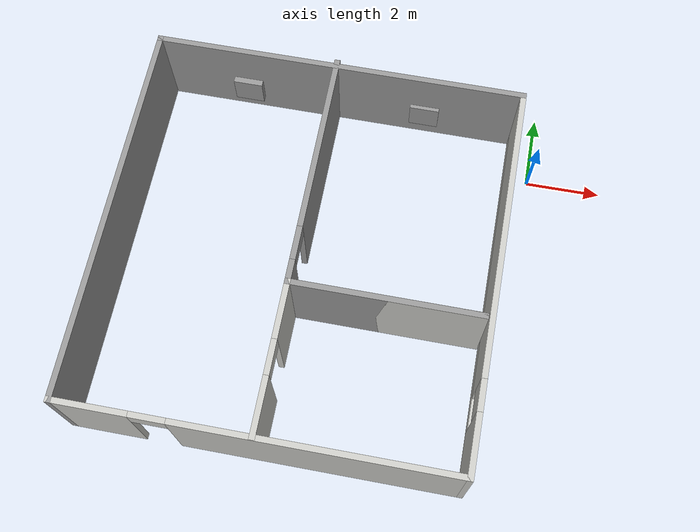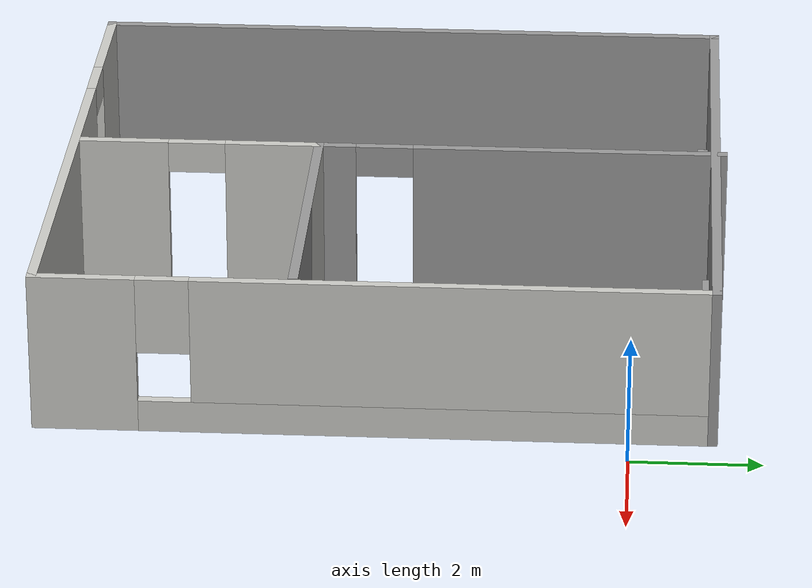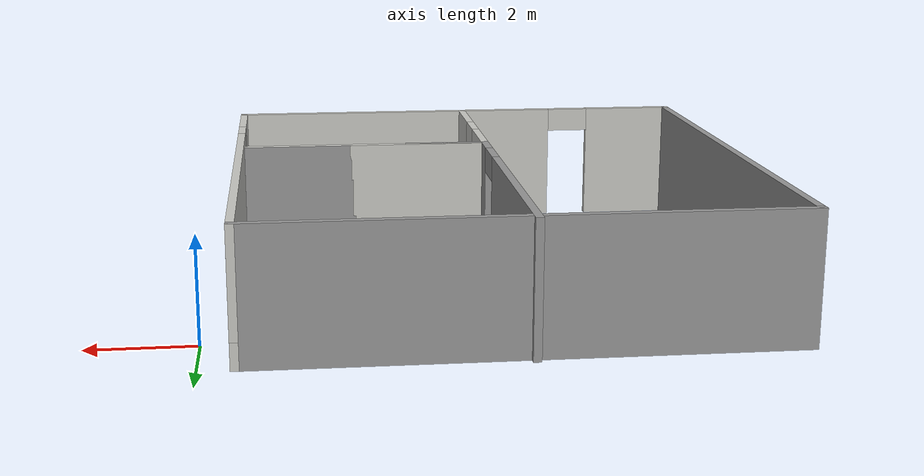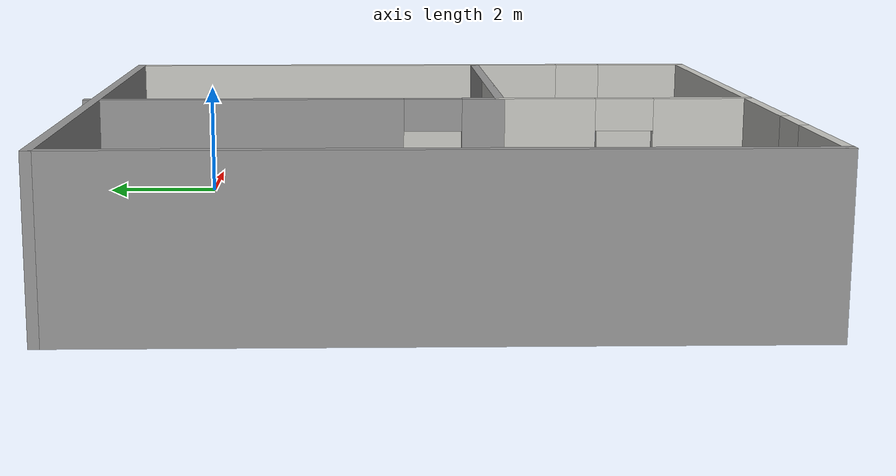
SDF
<?xml version='1.0'?>
<sdf version='1.7'>
  <model name='Untitled'>
    <pose>-5.27701 -3.7479 0 0 -0 0</pose>
    <link name='Wall_11'>
      <pose>-0.372007 1.931 0 0 -0 -1.5708</pose>
      <visual name='Wall_11_Visual_0'>
        <pose>-0.781 0 1.25 0 -0 0</pose>
        <geometry>
          <box>
            <size>4.938 0.15 2.5</size>
          </box>
        </geometry>
        <material>
          <script>
            <uri>file://media/materials/scripts/gazebo.material</uri>
            <name>Gazebo/Grey</name>
          </script>
          <ambient>1 1 1 1</ambient>
        </material>
        <meta>
          <layer>0</layer>
        </meta>
      </visual>
      <collision name='Wall_11_Collision_0'>
        <geometry>
          <box>
            <size>4.938 0.15 2.5</size>
          </box>
        </geometry>
        <pose>-0.781 0 1.25 0 -0 0</pose>
      </collision>
      <visual name='Wall_11_Visual_1'>
        <pose>2.919 0 1.25 0 -0 0</pose>
        <geometry>
          <box>
            <size>0.662 0.15 2.5</size>
          </box>
        </geometry>
        <material>
          <script>
            <uri>file://media/materials/scripts/gazebo.material</uri>
            <name>Gazebo/Grey</name>
          </script>
          <ambient>1 1 1 1</ambient>
        </material>
        <meta>
          <layer>0</layer>
        </meta>
      </visual>
      <collision name='Wall_11_Collision_1'>
        <geometry>
          <box>
            <size>0.662 0.15 2.5</size>
          </box>
        </geometry>
        <pose>2.919 0 1.25 0 -0 0</pose>
      </collision>
      <visual name='Wall_11_Visual_2'>
        <pose>2.138 0 2.25 0 -0 0</pose>
        <geometry>
          <box>
            <size>0.9 0.15 0.5</size>
          </box>
        </geometry>
        <material>
          <script>
            <uri>file://media/materials/scripts/gazebo.material</uri>
            <name>Gazebo/Grey</name>
          </script>
          <ambient>1 1 1 1</ambient>
        </material>
        <meta>
          <layer>0</layer>
        </meta>
      </visual>
      <collision name='Wall_11_Collision_2'>
        <geometry>
          <box>
            <size>0.9 0.15 0.5</size>
          </box>
        </geometry>
        <pose>2.138 0 2.25 0 -0 0</pose>
      </collision>
    </link>
    <link name='Wall_12'>
      <collision name='Wall_12_Collision'>
        <geometry>
          <box>
            <size>5 0.15 2.5</size>
          </box>
        </geometry>
        <pose>0 0 1.25 0 -0 0</pose>
      </collision>
      <visual name='Wall_12_Visual'>
        <pose>0 0 1.25 0 -0 0</pose>
        <geometry>
          <box>
            <size>5 0.15 2.5</size>
          </box>
        </geometry>
        <material>
          <script>
            <uri>file://media/materials/scripts/gazebo.material</uri>
            <name>Gazebo/Grey</name>
          </script>
          <ambient>1 1 1 1</ambient>
        </material>
        <meta>
          <layer>0</layer>
        </meta>
      </visual>
      <pose>2.05299 -1.244 0 0 -0 0</pose>
    </link>
    <link name='Wall_13'>
      <collision name='Wall_13_Collision'>
        <geometry>
          <box>
            <size>5 0.15 2.5</size>
          </box>
        </geometry>
        <pose>0 0 1.25 0 -0 0</pose>
      </collision>
      <visual name='Wall_13_Visual'>
        <pose>0 0 1.25 0 -0 0</pose>
        <geometry>
          <box>
            <size>5 0.15 2.5</size>
          </box>
        </geometry>
        <material>
          <script>
            <uri>file://media/materials/scripts/gazebo.material</uri>
            <name>Gazebo/CeilingTiled</name>
          </script>
          <ambient>1 1 1 1</ambient>
        </material>
        <meta>
          <layer>0</layer>
        </meta>
      </visual>
      <pose>2.05299 -1.244 0 0 -0 3.14159</pose>
    </link>
    <link name='Wall_14'>
      <pose>-0.372007 -3.169 0 0 -0 -1.5708</pose>
      <visual name='Wall_14_Visual_0'>
        <pose>-1.2225 0 1.25 0 -0 0</pose>
        <geometry>
          <box>
            <size>1.555 0.15 2.5</size>
          </box>
        </geometry>
        <material>
          <script>
            <uri>file://media/materials/scripts/gazebo.material</uri>
            <name>Gazebo/CeilingTiled</name>
          </script>
          <ambient>1 1 1 1</ambient>
        </material>
        <meta>
          <layer>0</layer>
        </meta>
      </visual>
      <collision name='Wall_14_Collision_0'>
        <geometry>
          <box>
            <size>1.555 0.15 2.5</size>
          </box>
        </geometry>
        <pose>-1.2225 0 1.25 0 -0 0</pose>
      </collision>
      <visual name='Wall_14_Visual_1'>
        <pose>1.2275 0 1.25 0 -0 0</pose>
        <geometry>
          <box>
            <size>1.545 0.15 2.5</size>
          </box>
        </geometry>
        <material>
          <script>
            <uri>file://media/materials/scripts/gazebo.material</uri>
            <name>Gazebo/CeilingTiled</name>
          </script>
          <ambient>1 1 1 1</ambient>
        </material>
        <meta>
          <layer>0</layer>
        </meta>
      </visual>
      <collision name='Wall_14_Collision_1'>
        <geometry>
          <box>
            <size>1.545 0.15 2.5</size>
          </box>
        </geometry>
        <pose>1.2275 0 1.25 0 -0 0</pose>
      </collision>
      <visual name='Wall_14_Visual_2'>
        <pose>0.005 0 2.25 0 -0 0</pose>
        <geometry>
          <box>
            <size>0.9 0.15 0.5</size>
          </box>
        </geometry>
        <material>
          <script>
            <uri>file://media/materials/scripts/gazebo.material</uri>
            <name>Gazebo/CeilingTiled</name>
          </script>
          <ambient>1 1 1 1</ambient>
        </material>
        <meta>
          <layer>0</layer>
        </meta>
      </visual>
      <collision name='Wall_14_Collision_2'>
        <geometry>
          <box>
            <size>0.9 0.15 0.5</size>
          </box>
        </geometry>
        <pose>0.005 0 2.25 0 -0 0</pose>
      </collision>
    </link>
    <link name='Wall_6'>
      <pose>-0.277008 -5.106 0 0 -0 0</pose>
      <visual name='Wall_6_Visual_0'>
        <pose>-4.0145 0 1.25 0 -0 0</pose>
        <geometry>
          <box>
            <size>1.971 0.15 2.5</size>
          </box>
        </geometry>
        <material>
          <script>
            <uri>file://media/materials/scripts/gazebo.material</uri>
            <name>Gazebo/CeilingTiled</name>
          </script>
          <ambient>1 1 1 1</ambient>
        </material>
        <meta>
          <layer>0</layer>
        </meta>
      </visual>
      <collision name='Wall_6_Collision_0'>
        <geometry>
          <box>
            <size>1.971 0.15 2.5</size>
          </box>
        </geometry>
        <pose>-4.0145 0 1.25 0 -0 0</pose>
      </collision>
      <visual name='Wall_6_Visual_1'>
        <pose>1.4355 0 1.25 0 -0 0</pose>
        <geometry>
          <box>
            <size>7.129 0.15 2.5</size>
          </box>
        </geometry>
        <material>
          <script>
            <uri>file://media/materials/scripts/gazebo.material</uri>
            <name>Gazebo/CeilingTiled</name>
          </script>
          <ambient>1 1 1 1</ambient>
        </material>
        <meta>
          <layer>0</layer>
        </meta>
      </visual>
      <collision name='Wall_6_Collision_1'>
        <geometry>
          <box>
            <size>7.129 0.15 2.5</size>
          </box>
        </geometry>
        <pose>1.4355 0 1.25 0 -0 0</pose>
      </collision>
      <visual name='Wall_6_Visual_2'>
        <pose>-2.579 0 2.25 0 -0 0</pose>
        <geometry>
          <box>
            <size>0.9 0.15 0.5</size>
          </box>
        </geometry>
        <material>
          <script>
            <uri>file://media/materials/scripts/gazebo.material</uri>
            <name>Gazebo/CeilingTiled</name>
          </script>
          <ambient>1 1 1 1</ambient>
        </material>
        <meta>
          <layer>0</layer>
        </meta>
      </visual>
      <collision name='Wall_6_Collision_2'>
        <geometry>
          <box>
            <size>0.9 0.15 0.5</size>
          </box>
        </geometry>
        <pose>-2.579 0 2.25 0 -0 0</pose>
      </collision>
    </link>
    <link name='Wall_7'>
      <pose>4.64799 -0.056 0 0 -0 1.5708</pose>
      <visual name='Wall_7_Visual_0'>
        <pose>-4.3215 0 1.25 0 -0 0</pose>
        <geometry>
          <box>
            <size>1.607 0.15 2.5</size>
          </box>
        </geometry>
        <material>
          <script>
            <uri>file://media/materials/scripts/gazebo.material</uri>
            <name>Gazebo/CeilingTiled</name>
          </script>
          <ambient>1 1 1 1</ambient>
        </material>
        <meta>
          <layer>0</layer>
        </meta>
      </visual>
      <collision name='Wall_7_Collision_0'>
        <geometry>
          <box>
            <size>1.607 0.15 2.5</size>
          </box>
        </geometry>
        <pose>-4.3215 0 1.25 0 -0 0</pose>
      </collision>
      <visual name='Wall_7_Visual_1'>
        <pose>0.8035 0 0.25 0 -0 0</pose>
        <geometry>
          <box>
            <size>8.643 0.15 0.5</size>
          </box>
        </geometry>
        <material>
          <script>
            <uri>file://media/materials/scripts/gazebo.material</uri>
            <name>Gazebo/CeilingTiled</name>
          </script>
          <ambient>1 1 1 1</ambient>
        </material>
        <meta>
          <layer>0</layer>
        </meta>
      </visual>
      <collision name='Wall_7_Collision_1'>
        <geometry>
          <box>
            <size>8.643 0.15 0.5</size>
          </box>
        </geometry>
        <pose>0.8035 0 0.25 0 -0 0</pose>
      </collision>
      <visual name='Wall_7_Visual_2'>
        <pose>1.2035 0 1.5 0 -0 0</pose>
        <geometry>
          <box>
            <size>7.843 0.15 2</size>
          </box>
        </geometry>
        <material>
          <script>
            <uri>file://media/materials/scripts/gazebo.material</uri>
            <name>Gazebo/CeilingTiled</name>
          </script>
          <ambient>1 1 1 1</ambient>
        </material>
        <meta>
          <layer>0</layer>
        </meta>
      </visual>
      <collision name='Wall_7_Collision_2'>
        <geometry>
          <box>
            <size>7.843 0.15 2</size>
          </box>
        </geometry>
        <pose>1.2035 0 1.5 0 -0 0</pose>
      </collision>
      <visual name='Wall_7_Visual_3'>
        <pose>-3.118 0 1.9 0 -0 0</pose>
        <geometry>
          <box>
            <size>0.8 0.15 1.2</size>
          </box>
        </geometry>
        <material>
          <script>
            <uri>file://media/materials/scripts/gazebo.material</uri>
            <name>Gazebo/CeilingTiled</name>
          </script>
          <ambient>1 1 1 1</ambient>
        </material>
        <meta>
          <layer>0</layer>
        </meta>
      </visual>
      <collision name='Wall_7_Collision_3'>
        <geometry>
          <box>
            <size>0.8 0.15 1.2</size>
          </box>
        </geometry>
        <pose>-3.118 0 1.9 0 -0 0</pose>
      </collision>
    </link>
    <link name='Wall_8'>
      <collision name='Wall_8_Collision'>
        <geometry>
          <box>
            <size>10 0.15 2.5</size>
          </box>
        </geometry>
        <pose>0 0 1.25 0 -0 0</pose>
      </collision>
      <visual name='Wall_8_Visual'>
        <pose>0 0 1.25 0 -0 0</pose>
        <geometry>
          <box>
            <size>10 0.15 2.5</size>
          </box>
        </geometry>
        <material>
          <script>
            <uri>file://media/materials/scripts/gazebo.material</uri>
            <name>Gazebo/Grey</name>
          </script>
          <ambient>1 1 1 1</ambient>
        </material>
        <meta>
          <layer>0</layer>
        </meta>
      </visual>
      <pose>-0.277008 4.994 0 0 -0 3.14159</pose>
    </link>
    <link name='Wall_9'>
      <collision name='Wall_9_Collision'>
        <geometry>
          <box>
            <size>10.25 0.15 2.5</size>
          </box>
        </geometry>
        <pose>0 0 1.25 0 -0 0</pose>
      </collision>
      <visual name='Wall_9_Visual'>
        <pose>0 0 1.25 0 -0 0</pose>
        <geometry>
          <box>
            <size>10.25 0.15 2.5</size>
          </box>
        </geometry>
        <material>
          <script>
            <uri>file://media/materials/scripts/gazebo.material</uri>
            <name>Gazebo/Grey</name>
          </script>
          <ambient>1 1 1 1</ambient>
        </material>
        <meta>
          <layer>0</layer>
        </meta>
      </visual>
      <pose>-5.20201 -0.056 0 0 -0 -1.5708</pose>
    </link>
    <link name='Window_0'>
      <collision name='Window_0_Collision'>
        <geometry>
          <box>
            <size>0.8 0.17 0.8</size>
          </box>
        </geometry>
        <pose>0 0 0.4 0 -0 0</pose>
      </collision>
      <visual name='Window_0_Visual'>
        <pose>0 0 0.4 0 -0 0</pose>
        <geometry>
          <box>
            <size>0.8 0.17 0.8</size>
          </box>
        </geometry>
        <material>
          <script>
            <uri>file://media/materials/scripts/gazebo.material</uri>
            <name>Gazebo/Grey</name>
          </script>
        </material>
      </visual>
      <pose>-2.85601 4.83 0.5 0 -0 0</pose>
    </link>
    <link name='Window_1'>
      <collision name='Window_1_Collision'>
        <geometry>
          <box>
            <size>0.8 0.17 0.8</size>
          </box>
        </geometry>
        <pose>0 0 0.4 0 -0 0</pose>
      </collision>
      <visual name='Window_1_Visual'>
        <pose>0 0 0.4 0 -0 0</pose>
        <geometry>
          <box>
            <size>0.8 0.17 0.8</size>
          </box>
        </geometry>
        <material>
          <script>
            <uri>file://media/materials/scripts/gazebo.material</uri>
            <name>Gazebo/Grey</name>
          </script>
        </material>
      </visual>
      <pose>2.11199 4.899 0.5 0 -0 0</pose>
    </link>
    <static>1</static>
  </model>
</sdf>
